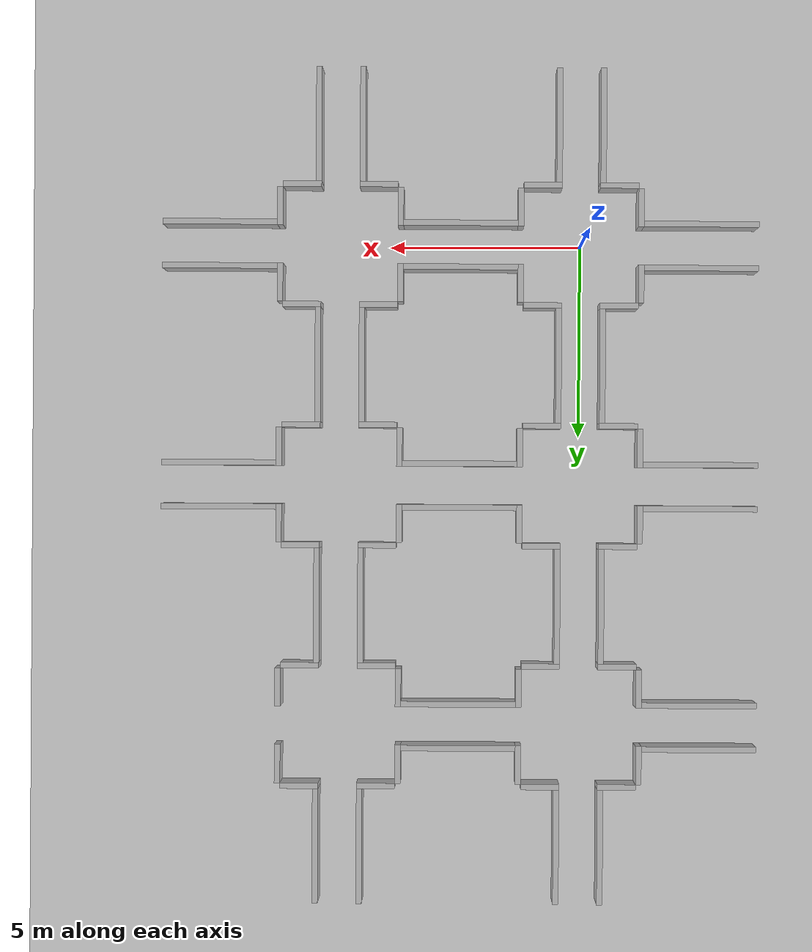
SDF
<sdf version="1.4">
 <world name="scenario 1">
  <include><uri>model://ground_plane</uri></include>
  <include><uri>model://sun</uri></include>
  <model name="roomWall_968">
   <pose>-1.575 -1 0 0 0 0</pose>
   <static>true</static>
   <link name="box">
    <pose>0 0 0.5 0 0 0</pose>
    <collision name="collision"><geometry><box><size>0.15 1 1</size></box></geometry></collision>
    <visual name="visual"><geometry><box><size>0.15 1 1</size></box></geometry></visual>
   </link>
  </model>
  <model name="roomWall_577">
   <pose>-1.575 1 0 0 0 0</pose>
   <static>true</static>
   <link name="box">
    <pose>0 0 0.5 0 0 0</pose>
    <collision name="collision"><geometry><box><size>0.15 1 1</size></box></geometry></collision>
    <visual name="visual"><geometry><box><size>0.15 1 1</size></box></geometry></visual>
   </link>
  </model>
  <model name="roomWall_369">
   <pose>-1 1.575 0 0 0 0</pose>
   <static>true</static>
   <link name="box">
    <pose>0 0 0.5 0 0 1.5707963267948966</pose>
    <collision name="collision"><geometry><box><size>0.15 1 1</size></box></geometry></collision>
    <visual name="visual"><geometry><box><size>0.15 1 1</size></box></geometry></visual>
   </link>
  </model>
  <model name="roomWall_167">
   <pose>1 1.575 0 0 0 0</pose>
   <static>true</static>
   <link name="box">
    <pose>0 0 0.5 0 0 1.5707963267948966</pose>
    <collision name="collision"><geometry><box><size>0.15 1 1</size></box></geometry></collision>
    <visual name="visual"><geometry><box><size>0.15 1 1</size></box></geometry></visual>
   </link>
  </model>
  <model name="roomWall_520">
   <pose>1.575 1 0 0 0 0</pose>
   <static>true</static>
   <link name="box">
    <pose>0 0 0.5 0 0 0</pose>
    <collision name="collision"><geometry><box><size>0.15 1 1</size></box></geometry></collision>
    <visual name="visual"><geometry><box><size>0.15 1 1</size></box></geometry></visual>
   </link>
  </model>
  <model name="roomWall_239">
   <pose>1.575 -1 0 0 0 0</pose>
   <static>true</static>
   <link name="box">
    <pose>0 0 0.5 0 0 0</pose>
    <collision name="collision"><geometry><box><size>0.15 1 1</size></box></geometry></collision>
    <visual name="visual"><geometry><box><size>0.15 1 1</size></box></geometry></visual>
   </link>
  </model>
  <model name="roomWall_794">
   <pose>1 -1.575 0 0 0 0</pose>
   <static>true</static>
   <link name="box">
    <pose>0 0 0.5 0 0 1.5707963267948966</pose>
    <collision name="collision"><geometry><box><size>0.15 1 1</size></box></geometry></collision>
    <visual name="visual"><geometry><box><size>0.15 1 1</size></box></geometry></visual>
   </link>
  </model>
  <model name="roomWall_392">
   <pose>-1 -1.575 0 0 0 0</pose>
   <static>true</static>
   <link name="box">
    <pose>0 0 0.5 0 0 1.5707963267948966</pose>
    <collision name="collision"><geometry><box><size>0.15 1 1</size></box></geometry></collision>
    <visual name="visual"><geometry><box><size>0.15 1 1</size></box></geometry></visual>
   </link>
  </model>
  <model name="roomWall_996">
   <pose>-1.575 5.3 0 0 0 0</pose>
   <static>true</static>
   <link name="box">
    <pose>0 0 0.5 0 0 0</pose>
    <collision name="collision"><geometry><box><size>0.15 1 1</size></box></geometry></collision>
    <visual name="visual"><geometry><box><size>0.15 1 1</size></box></geometry></visual>
   </link>
  </model>
  <model name="roomWall_403">
   <pose>-1.575 7.3 0 0 0 0</pose>
   <static>true</static>
   <link name="box">
    <pose>0 0 0.5 0 0 0</pose>
    <collision name="collision"><geometry><box><size>0.15 1 1</size></box></geometry></collision>
    <visual name="visual"><geometry><box><size>0.15 1 1</size></box></geometry></visual>
   </link>
  </model>
  <model name="roomWall_412">
   <pose>-1 7.875 0 0 0 0</pose>
   <static>true</static>
   <link name="box">
    <pose>0 0 0.5 0 0 1.5707963267948966</pose>
    <collision name="collision"><geometry><box><size>0.15 1 1</size></box></geometry></collision>
    <visual name="visual"><geometry><box><size>0.15 1 1</size></box></geometry></visual>
   </link>
  </model>
  <model name="roomWall_707">
   <pose>1 7.875 0 0 0 0</pose>
   <static>true</static>
   <link name="box">
    <pose>0 0 0.5 0 0 1.5707963267948966</pose>
    <collision name="collision"><geometry><box><size>0.15 1 1</size></box></geometry></collision>
    <visual name="visual"><geometry><box><size>0.15 1 1</size></box></geometry></visual>
   </link>
  </model>
  <model name="roomWall_189">
   <pose>1.575 7.3 0 0 0 0</pose>
   <static>true</static>
   <link name="box">
    <pose>0 0 0.5 0 0 0</pose>
    <collision name="collision"><geometry><box><size>0.15 1 1</size></box></geometry></collision>
    <visual name="visual"><geometry><box><size>0.15 1 1</size></box></geometry></visual>
   </link>
  </model>
  <model name="roomWall_382">
   <pose>1.575 5.3 0 0 0 0</pose>
   <static>true</static>
   <link name="box">
    <pose>0 0 0.5 0 0 0</pose>
    <collision name="collision"><geometry><box><size>0.15 1 1</size></box></geometry></collision>
    <visual name="visual"><geometry><box><size>0.15 1 1</size></box></geometry></visual>
   </link>
  </model>
  <model name="roomWall_954">
   <pose>1 4.725 0 0 0 0</pose>
   <static>true</static>
   <link name="box">
    <pose>0 0 0.5 0 0 1.5707963267948966</pose>
    <collision name="collision"><geometry><box><size>0.15 1 1</size></box></geometry></collision>
    <visual name="visual"><geometry><box><size>0.15 1 1</size></box></geometry></visual>
   </link>
  </model>
  <model name="roomWall_351">
   <pose>-1 4.725 0 0 0 0</pose>
   <static>true</static>
   <link name="box">
    <pose>0 0 0.5 0 0 1.5707963267948966</pose>
    <collision name="collision"><geometry><box><size>0.15 1 1</size></box></geometry></collision>
    <visual name="visual"><geometry><box><size>0.15 1 1</size></box></geometry></visual>
   </link>
  </model>
  <model name="roomWall_91">
   <pose>-1.575 11.6 0 0 0 0</pose>
   <static>true</static>
   <link name="box">
    <pose>0 0 0.5 0 0 0</pose>
    <collision name="collision"><geometry><box><size>0.15 1 1</size></box></geometry></collision>
    <visual name="visual"><geometry><box><size>0.15 1 1</size></box></geometry></visual>
   </link>
  </model>
  <model name="roomWall_240">
   <pose>-1.575 13.6 0 0 0 0</pose>
   <static>true</static>
   <link name="box">
    <pose>0 0 0.5 0 0 0</pose>
    <collision name="collision"><geometry><box><size>0.15 1 1</size></box></geometry></collision>
    <visual name="visual"><geometry><box><size>0.15 1 1</size></box></geometry></visual>
   </link>
  </model>
  <model name="roomWall_884">
   <pose>-1 14.174999999999999 0 0 0 0</pose>
   <static>true</static>
   <link name="box">
    <pose>0 0 0.5 0 0 1.5707963267948966</pose>
    <collision name="collision"><geometry><box><size>0.15 1 1</size></box></geometry></collision>
    <visual name="visual"><geometry><box><size>0.15 1 1</size></box></geometry></visual>
   </link>
  </model>
  <model name="roomWall_946">
   <pose>1 14.174999999999999 0 0 0 0</pose>
   <static>true</static>
   <link name="box">
    <pose>0 0 0.5 0 0 1.5707963267948966</pose>
    <collision name="collision"><geometry><box><size>0.15 1 1</size></box></geometry></collision>
    <visual name="visual"><geometry><box><size>0.15 1 1</size></box></geometry></visual>
   </link>
  </model>
  <model name="roomWall_23">
   <pose>1.575 13.6 0 0 0 0</pose>
   <static>true</static>
   <link name="box">
    <pose>0 0 0.5 0 0 0</pose>
    <collision name="collision"><geometry><box><size>0.15 1 1</size></box></geometry></collision>
    <visual name="visual"><geometry><box><size>0.15 1 1</size></box></geometry></visual>
   </link>
  </model>
  <model name="roomWall_426">
   <pose>1.575 11.6 0 0 0 0</pose>
   <static>true</static>
   <link name="box">
    <pose>0 0 0.5 0 0 0</pose>
    <collision name="collision"><geometry><box><size>0.15 1 1</size></box></geometry></collision>
    <visual name="visual"><geometry><box><size>0.15 1 1</size></box></geometry></visual>
   </link>
  </model>
  <model name="roomWall_644">
   <pose>1 11.025 0 0 0 0</pose>
   <static>true</static>
   <link name="box">
    <pose>0 0 0.5 0 0 1.5707963267948966</pose>
    <collision name="collision"><geometry><box><size>0.15 1 1</size></box></geometry></collision>
    <visual name="visual"><geometry><box><size>0.15 1 1</size></box></geometry></visual>
   </link>
  </model>
  <model name="roomWall_613">
   <pose>-1 11.025 0 0 0 0</pose>
   <static>true</static>
   <link name="box">
    <pose>0 0 0.5 0 0 1.5707963267948966</pose>
    <collision name="collision"><geometry><box><size>0.15 1 1</size></box></geometry></collision>
    <visual name="visual"><geometry><box><size>0.15 1 1</size></box></geometry></visual>
   </link>
  </model>
  <model name="roomWall_917">
   <pose>4.725 -1 0 0 0 0</pose>
   <static>true</static>
   <link name="box">
    <pose>0 0 0.5 0 0 0</pose>
    <collision name="collision"><geometry><box><size>0.15 1 1</size></box></geometry></collision>
    <visual name="visual"><geometry><box><size>0.15 1 1</size></box></geometry></visual>
   </link>
  </model>
  <model name="roomWall_853">
   <pose>4.725 1 0 0 0 0</pose>
   <static>true</static>
   <link name="box">
    <pose>0 0 0.5 0 0 0</pose>
    <collision name="collision"><geometry><box><size>0.15 1 1</size></box></geometry></collision>
    <visual name="visual"><geometry><box><size>0.15 1 1</size></box></geometry></visual>
   </link>
  </model>
  <model name="roomWall_554">
   <pose>5.3 1.575 0 0 0 0</pose>
   <static>true</static>
   <link name="box">
    <pose>0 0 0.5 0 0 1.5707963267948966</pose>
    <collision name="collision"><geometry><box><size>0.15 1 1</size></box></geometry></collision>
    <visual name="visual"><geometry><box><size>0.15 1 1</size></box></geometry></visual>
   </link>
  </model>
  <model name="roomWall_152">
   <pose>7.3 1.575 0 0 0 0</pose>
   <static>true</static>
   <link name="box">
    <pose>0 0 0.5 0 0 1.5707963267948966</pose>
    <collision name="collision"><geometry><box><size>0.15 1 1</size></box></geometry></collision>
    <visual name="visual"><geometry><box><size>0.15 1 1</size></box></geometry></visual>
   </link>
  </model>
  <model name="roomWall_882">
   <pose>7.875 1 0 0 0 0</pose>
   <static>true</static>
   <link name="box">
    <pose>0 0 0.5 0 0 0</pose>
    <collision name="collision"><geometry><box><size>0.15 1 1</size></box></geometry></collision>
    <visual name="visual"><geometry><box><size>0.15 1 1</size></box></geometry></visual>
   </link>
  </model>
  <model name="roomWall_438">
   <pose>7.875 -1 0 0 0 0</pose>
   <static>true</static>
   <link name="box">
    <pose>0 0 0.5 0 0 0</pose>
    <collision name="collision"><geometry><box><size>0.15 1 1</size></box></geometry></collision>
    <visual name="visual"><geometry><box><size>0.15 1 1</size></box></geometry></visual>
   </link>
  </model>
  <model name="roomWall_914">
   <pose>7.3 -1.575 0 0 0 0</pose>
   <static>true</static>
   <link name="box">
    <pose>0 0 0.5 0 0 1.5707963267948966</pose>
    <collision name="collision"><geometry><box><size>0.15 1 1</size></box></geometry></collision>
    <visual name="visual"><geometry><box><size>0.15 1 1</size></box></geometry></visual>
   </link>
  </model>
  <model name="roomWall_795">
   <pose>5.3 -1.575 0 0 0 0</pose>
   <static>true</static>
   <link name="box">
    <pose>0 0 0.5 0 0 1.5707963267948966</pose>
    <collision name="collision"><geometry><box><size>0.15 1 1</size></box></geometry></collision>
    <visual name="visual"><geometry><box><size>0.15 1 1</size></box></geometry></visual>
   </link>
  </model>
  <model name="roomWall_560">
   <pose>4.725 5.3 0 0 0 0</pose>
   <static>true</static>
   <link name="box">
    <pose>0 0 0.5 0 0 0</pose>
    <collision name="collision"><geometry><box><size>0.15 1 1</size></box></geometry></collision>
    <visual name="visual"><geometry><box><size>0.15 1 1</size></box></geometry></visual>
   </link>
  </model>
  <model name="roomWall_929">
   <pose>4.725 7.3 0 0 0 0</pose>
   <static>true</static>
   <link name="box">
    <pose>0 0 0.5 0 0 0</pose>
    <collision name="collision"><geometry><box><size>0.15 1 1</size></box></geometry></collision>
    <visual name="visual"><geometry><box><size>0.15 1 1</size></box></geometry></visual>
   </link>
  </model>
  <model name="roomWall_753">
   <pose>5.3 7.875 0 0 0 0</pose>
   <static>true</static>
   <link name="box">
    <pose>0 0 0.5 0 0 1.5707963267948966</pose>
    <collision name="collision"><geometry><box><size>0.15 1 1</size></box></geometry></collision>
    <visual name="visual"><geometry><box><size>0.15 1 1</size></box></geometry></visual>
   </link>
  </model>
  <model name="roomWall_282">
   <pose>7.3 7.875 0 0 0 0</pose>
   <static>true</static>
   <link name="box">
    <pose>0 0 0.5 0 0 1.5707963267948966</pose>
    <collision name="collision"><geometry><box><size>0.15 1 1</size></box></geometry></collision>
    <visual name="visual"><geometry><box><size>0.15 1 1</size></box></geometry></visual>
   </link>
  </model>
  <model name="roomWall_609">
   <pose>7.875 7.3 0 0 0 0</pose>
   <static>true</static>
   <link name="box">
    <pose>0 0 0.5 0 0 0</pose>
    <collision name="collision"><geometry><box><size>0.15 1 1</size></box></geometry></collision>
    <visual name="visual"><geometry><box><size>0.15 1 1</size></box></geometry></visual>
   </link>
  </model>
  <model name="roomWall_933">
   <pose>7.875 5.3 0 0 0 0</pose>
   <static>true</static>
   <link name="box">
    <pose>0 0 0.5 0 0 0</pose>
    <collision name="collision"><geometry><box><size>0.15 1 1</size></box></geometry></collision>
    <visual name="visual"><geometry><box><size>0.15 1 1</size></box></geometry></visual>
   </link>
  </model>
  <model name="roomWall_214">
   <pose>7.3 4.725 0 0 0 0</pose>
   <static>true</static>
   <link name="box">
    <pose>0 0 0.5 0 0 1.5707963267948966</pose>
    <collision name="collision"><geometry><box><size>0.15 1 1</size></box></geometry></collision>
    <visual name="visual"><geometry><box><size>0.15 1 1</size></box></geometry></visual>
   </link>
  </model>
  <model name="roomWall_115">
   <pose>5.3 4.725 0 0 0 0</pose>
   <static>true</static>
   <link name="box">
    <pose>0 0 0.5 0 0 1.5707963267948966</pose>
    <collision name="collision"><geometry><box><size>0.15 1 1</size></box></geometry></collision>
    <visual name="visual"><geometry><box><size>0.15 1 1</size></box></geometry></visual>
   </link>
  </model>
  <model name="roomWall_711">
   <pose>4.725 11.6 0 0 0 0</pose>
   <static>true</static>
   <link name="box">
    <pose>0 0 0.5 0 0 0</pose>
    <collision name="collision"><geometry><box><size>0.15 1 1</size></box></geometry></collision>
    <visual name="visual"><geometry><box><size>0.15 1 1</size></box></geometry></visual>
   </link>
  </model>
  <model name="roomWall_908">
   <pose>4.725 13.6 0 0 0 0</pose>
   <static>true</static>
   <link name="box">
    <pose>0 0 0.5 0 0 0</pose>
    <collision name="collision"><geometry><box><size>0.15 1 1</size></box></geometry></collision>
    <visual name="visual"><geometry><box><size>0.15 1 1</size></box></geometry></visual>
   </link>
  </model>
  <model name="roomWall_66">
   <pose>5.3 14.174999999999999 0 0 0 0</pose>
   <static>true</static>
   <link name="box">
    <pose>0 0 0.5 0 0 1.5707963267948966</pose>
    <collision name="collision"><geometry><box><size>0.15 1 1</size></box></geometry></collision>
    <visual name="visual"><geometry><box><size>0.15 1 1</size></box></geometry></visual>
   </link>
  </model>
  <model name="roomWall_313">
   <pose>7.3 14.174999999999999 0 0 0 0</pose>
   <static>true</static>
   <link name="box">
    <pose>0 0 0.5 0 0 1.5707963267948966</pose>
    <collision name="collision"><geometry><box><size>0.15 1 1</size></box></geometry></collision>
    <visual name="visual"><geometry><box><size>0.15 1 1</size></box></geometry></visual>
   </link>
  </model>
  <model name="roomWall_263">
   <pose>7.875 13.6 0 0 0 0</pose>
   <static>true</static>
   <link name="box">
    <pose>0 0 0.5 0 0 0</pose>
    <collision name="collision"><geometry><box><size>0.15 1 1</size></box></geometry></collision>
    <visual name="visual"><geometry><box><size>0.15 1 1</size></box></geometry></visual>
   </link>
  </model>
  <model name="roomWall_313">
   <pose>7.875 11.6 0 0 0 0</pose>
   <static>true</static>
   <link name="box">
    <pose>0 0 0.5 0 0 0</pose>
    <collision name="collision"><geometry><box><size>0.15 1 1</size></box></geometry></collision>
    <visual name="visual"><geometry><box><size>0.15 1 1</size></box></geometry></visual>
   </link>
  </model>
  <model name="roomWall_369">
   <pose>7.3 11.025 0 0 0 0</pose>
   <static>true</static>
   <link name="box">
    <pose>0 0 0.5 0 0 1.5707963267948966</pose>
    <collision name="collision"><geometry><box><size>0.15 1 1</size></box></geometry></collision>
    <visual name="visual"><geometry><box><size>0.15 1 1</size></box></geometry></visual>
   </link>
  </model>
  <model name="roomWall_315">
   <pose>5.3 11.025 0 0 0 0</pose>
   <static>true</static>
   <link name="box">
    <pose>0 0 0.5 0 0 1.5707963267948966</pose>
    <collision name="collision"><geometry><box><size>0.15 1 1</size></box></geometry></collision>
    <visual name="visual"><geometry><box><size>0.15 1 1</size></box></geometry></visual>
   </link>
  </model>
  <model name="roomWall_174">
   <pose>-0.575 3.15 0 0 0 0</pose>
   <static>true</static>
   <link name="box">
    <pose>0 0 0.5 0 0 0</pose>
    <collision name="collision"><geometry><box><size>0.15 3 1</size></box></geometry></collision>
    <visual name="visual"><geometry><box><size>0.15 3 1</size></box></geometry></visual>
   </link>
  </model>
  <model name="roomWall_314">
   <pose>0.575 3.15 0 0 0 0</pose>
   <static>true</static>
   <link name="box">
    <pose>0 0 0.5 0 0 0</pose>
    <collision name="collision"><geometry><box><size>0.15 3 1</size></box></geometry></collision>
    <visual name="visual"><geometry><box><size>0.15 3 1</size></box></geometry></visual>
   </link>
  </model>
  <model name="roomWall_40">
   <pose>3.15 0.575 0 0 0 0</pose>
   <static>true</static>
   <link name="box">
    <pose>0 0 0.5 0 0 1.5707963267948966</pose>
    <collision name="collision"><geometry><box><size>0.15 3 1</size></box></geometry></collision>
    <visual name="visual"><geometry><box><size>0.15 3 1</size></box></geometry></visual>
   </link>
  </model>
  <model name="roomWall_366">
   <pose>3.15 -0.575 0 0 0 0</pose>
   <static>true</static>
   <link name="box">
    <pose>0 0 0.5 0 0 1.5707963267948966</pose>
    <collision name="collision"><geometry><box><size>0.15 3 1</size></box></geometry></collision>
    <visual name="visual"><geometry><box><size>0.15 3 1</size></box></geometry></visual>
   </link>
  </model>
  <model name="roomWall_402">
   <pose>0.575 -3.15 0 0 0 0</pose>
   <static>true</static>
   <link name="box">
    <pose>0 0 0.5 0 0 0</pose>
    <collision name="collision"><geometry><box><size>0.15 3 1</size></box></geometry></collision>
    <visual name="visual"><geometry><box><size>0.15 3 1</size></box></geometry></visual>
   </link>
  </model>
  <model name="roomWall_512">
   <pose>-0.575 -3.15 0 0 0 0</pose>
   <static>true</static>
   <link name="box">
    <pose>0 0 0.5 0 0 0</pose>
    <collision name="collision"><geometry><box><size>0.15 3 1</size></box></geometry></collision>
    <visual name="visual"><geometry><box><size>0.15 3 1</size></box></geometry></visual>
   </link>
  </model>
  <model name="roomWall_185">
   <pose>-3.15 -0.575 0 0 0 0</pose>
   <static>true</static>
   <link name="box">
    <pose>0 0 0.5 0 0 1.5707963267948966</pose>
    <collision name="collision"><geometry><box><size>0.15 3 1</size></box></geometry></collision>
    <visual name="visual"><geometry><box><size>0.15 3 1</size></box></geometry></visual>
   </link>
  </model>
  <model name="roomWall_325">
   <pose>-3.15 0.575 0 0 0 0</pose>
   <static>true</static>
   <link name="box">
    <pose>0 0 0.5 0 0 1.5707963267948966</pose>
    <collision name="collision"><geometry><box><size>0.15 3 1</size></box></geometry></collision>
    <visual name="visual"><geometry><box><size>0.15 3 1</size></box></geometry></visual>
   </link>
  </model>
  <model name="roomWall_729">
   <pose>-0.575 9.45 0 0 0 0</pose>
   <static>true</static>
   <link name="box">
    <pose>0 0 0.5 0 0 0</pose>
    <collision name="collision"><geometry><box><size>0.15 3 1</size></box></geometry></collision>
    <visual name="visual"><geometry><box><size>0.15 3 1</size></box></geometry></visual>
   </link>
  </model>
  <model name="roomWall_171">
   <pose>0.575 9.45 0 0 0 0</pose>
   <static>true</static>
   <link name="box">
    <pose>0 0 0.5 0 0 0</pose>
    <collision name="collision"><geometry><box><size>0.15 3 1</size></box></geometry></collision>
    <visual name="visual"><geometry><box><size>0.15 3 1</size></box></geometry></visual>
   </link>
  </model>
  <model name="roomWall_485">
   <pose>3.15 6.875 0 0 0 0</pose>
   <static>true</static>
   <link name="box">
    <pose>0 0 0.5 0 0 1.5707963267948966</pose>
    <collision name="collision"><geometry><box><size>0.15 3 1</size></box></geometry></collision>
    <visual name="visual"><geometry><box><size>0.15 3 1</size></box></geometry></visual>
   </link>
  </model>
  <model name="roomWall_321">
   <pose>3.15 5.725 0 0 0 0</pose>
   <static>true</static>
   <link name="box">
    <pose>0 0 0.5 0 0 1.5707963267948966</pose>
    <collision name="collision"><geometry><box><size>0.15 3 1</size></box></geometry></collision>
    <visual name="visual"><geometry><box><size>0.15 3 1</size></box></geometry></visual>
   </link>
  </model>
  <model name="roomWall_534">
   <pose>-3.15 5.725 0 0 0 0</pose>
   <static>true</static>
   <link name="box">
    <pose>0 0 0.5 0 0 1.5707963267948966</pose>
    <collision name="collision"><geometry><box><size>0.15 3 1</size></box></geometry></collision>
    <visual name="visual"><geometry><box><size>0.15 3 1</size></box></geometry></visual>
   </link>
  </model>
  <model name="roomWall_315">
   <pose>-3.15 6.875 0 0 0 0</pose>
   <static>true</static>
   <link name="box">
    <pose>0 0 0.5 0 0 1.5707963267948966</pose>
    <collision name="collision"><geometry><box><size>0.15 3 1</size></box></geometry></collision>
    <visual name="visual"><geometry><box><size>0.15 3 1</size></box></geometry></visual>
   </link>
  </model>
  <model name="roomWall_784">
   <pose>-0.575 15.75 0 0 0 0</pose>
   <static>true</static>
   <link name="box">
    <pose>0 0 0.5 0 0 0</pose>
    <collision name="collision"><geometry><box><size>0.15 3 1</size></box></geometry></collision>
    <visual name="visual"><geometry><box><size>0.15 3 1</size></box></geometry></visual>
   </link>
  </model>
  <model name="roomWall_681">
   <pose>0.575 15.75 0 0 0 0</pose>
   <static>true</static>
   <link name="box">
    <pose>0 0 0.5 0 0 0</pose>
    <collision name="collision"><geometry><box><size>0.15 3 1</size></box></geometry></collision>
    <visual name="visual"><geometry><box><size>0.15 3 1</size></box></geometry></visual>
   </link>
  </model>
  <model name="roomWall_807">
   <pose>3.15 13.174999999999999 0 0 0 0</pose>
   <static>true</static>
   <link name="box">
    <pose>0 0 0.5 0 0 1.5707963267948966</pose>
    <collision name="collision"><geometry><box><size>0.15 3 1</size></box></geometry></collision>
    <visual name="visual"><geometry><box><size>0.15 3 1</size></box></geometry></visual>
   </link>
  </model>
  <model name="roomWall_946">
   <pose>3.15 12.025 0 0 0 0</pose>
   <static>true</static>
   <link name="box">
    <pose>0 0 0.5 0 0 1.5707963267948966</pose>
    <collision name="collision"><geometry><box><size>0.15 3 1</size></box></geometry></collision>
    <visual name="visual"><geometry><box><size>0.15 3 1</size></box></geometry></visual>
   </link>
  </model>
  <model name="roomWall_211">
   <pose>-3.15 12.025 0 0 0 0</pose>
   <static>true</static>
   <link name="box">
    <pose>0 0 0.5 0 0 1.5707963267948966</pose>
    <collision name="collision"><geometry><box><size>0.15 3 1</size></box></geometry></collision>
    <visual name="visual"><geometry><box><size>0.15 3 1</size></box></geometry></visual>
   </link>
  </model>
  <model name="roomWall_64">
   <pose>-3.15 13.174999999999999 0 0 0 0</pose>
   <static>true</static>
   <link name="box">
    <pose>0 0 0.5 0 0 1.5707963267948966</pose>
    <collision name="collision"><geometry><box><size>0.15 3 1</size></box></geometry></collision>
    <visual name="visual"><geometry><box><size>0.15 3 1</size></box></geometry></visual>
   </link>
  </model>
  <model name="roomWall_55">
   <pose>5.725 3.15 0 0 0 0</pose>
   <static>true</static>
   <link name="box">
    <pose>0 0 0.5 0 0 0</pose>
    <collision name="collision"><geometry><box><size>0.15 3 1</size></box></geometry></collision>
    <visual name="visual"><geometry><box><size>0.15 3 1</size></box></geometry></visual>
   </link>
  </model>
  <model name="roomWall_670">
   <pose>6.875 3.15 0 0 0 0</pose>
   <static>true</static>
   <link name="box">
    <pose>0 0 0.5 0 0 0</pose>
    <collision name="collision"><geometry><box><size>0.15 3 1</size></box></geometry></collision>
    <visual name="visual"><geometry><box><size>0.15 3 1</size></box></geometry></visual>
   </link>
  </model>
  <model name="roomWall_308">
   <pose>9.45 0.575 0 0 0 0</pose>
   <static>true</static>
   <link name="box">
    <pose>0 0 0.5 0 0 1.5707963267948966</pose>
    <collision name="collision"><geometry><box><size>0.15 3 1</size></box></geometry></collision>
    <visual name="visual"><geometry><box><size>0.15 3 1</size></box></geometry></visual>
   </link>
  </model>
  <model name="roomWall_316">
   <pose>9.45 -0.575 0 0 0 0</pose>
   <static>true</static>
   <link name="box">
    <pose>0 0 0.5 0 0 1.5707963267948966</pose>
    <collision name="collision"><geometry><box><size>0.15 3 1</size></box></geometry></collision>
    <visual name="visual"><geometry><box><size>0.15 3 1</size></box></geometry></visual>
   </link>
  </model>
  <model name="roomWall_743">
   <pose>6.875 -3.15 0 0 0 0</pose>
   <static>true</static>
   <link name="box">
    <pose>0 0 0.5 0 0 0</pose>
    <collision name="collision"><geometry><box><size>0.15 3 1</size></box></geometry></collision>
    <visual name="visual"><geometry><box><size>0.15 3 1</size></box></geometry></visual>
   </link>
  </model>
  <model name="roomWall_551">
   <pose>5.725 -3.15 0 0 0 0</pose>
   <static>true</static>
   <link name="box">
    <pose>0 0 0.5 0 0 0</pose>
    <collision name="collision"><geometry><box><size>0.15 3 1</size></box></geometry></collision>
    <visual name="visual"><geometry><box><size>0.15 3 1</size></box></geometry></visual>
   </link>
  </model>
  <model name="roomWall_787">
   <pose>5.725 9.45 0 0 0 0</pose>
   <static>true</static>
   <link name="box">
    <pose>0 0 0.5 0 0 0</pose>
    <collision name="collision"><geometry><box><size>0.15 3 1</size></box></geometry></collision>
    <visual name="visual"><geometry><box><size>0.15 3 1</size></box></geometry></visual>
   </link>
  </model>
  <model name="roomWall_926">
   <pose>6.875 9.45 0 0 0 0</pose>
   <static>true</static>
   <link name="box">
    <pose>0 0 0.5 0 0 0</pose>
    <collision name="collision"><geometry><box><size>0.15 3 1</size></box></geometry></collision>
    <visual name="visual"><geometry><box><size>0.15 3 1</size></box></geometry></visual>
   </link>
  </model>
  <model name="roomWall_886">
   <pose>9.45 6.875 0 0 0 0</pose>
   <static>true</static>
   <link name="box">
    <pose>0 0 0.5 0 0 1.5707963267948966</pose>
    <collision name="collision"><geometry><box><size>0.15 3 1</size></box></geometry></collision>
    <visual name="visual"><geometry><box><size>0.15 3 1</size></box></geometry></visual>
   </link>
  </model>
  <model name="roomWall_731">
   <pose>9.45 5.725 0 0 0 0</pose>
   <static>true</static>
   <link name="box">
    <pose>0 0 0.5 0 0 1.5707963267948966</pose>
    <collision name="collision"><geometry><box><size>0.15 3 1</size></box></geometry></collision>
    <visual name="visual"><geometry><box><size>0.15 3 1</size></box></geometry></visual>
   </link>
  </model>
  <model name="roomWall_94">
   <pose>5.725 15.75 0 0 0 0</pose>
   <static>true</static>
   <link name="box">
    <pose>0 0 0.5 0 0 0</pose>
    <collision name="collision"><geometry><box><size>0.15 3 1</size></box></geometry></collision>
    <visual name="visual"><geometry><box><size>0.15 3 1</size></box></geometry></visual>
   </link>
  </model>
  <model name="roomWall_558">
   <pose>6.875 15.75 0 0 0 0</pose>
   <static>true</static>
   <link name="box">
    <pose>0 0 0.5 0 0 0</pose>
    <collision name="collision"><geometry><box><size>0.15 3 1</size></box></geometry></collision>
    <visual name="visual"><geometry><box><size>0.15 3 1</size></box></geometry></visual>
   </link>
  </model>
 </world>
</sdf>
